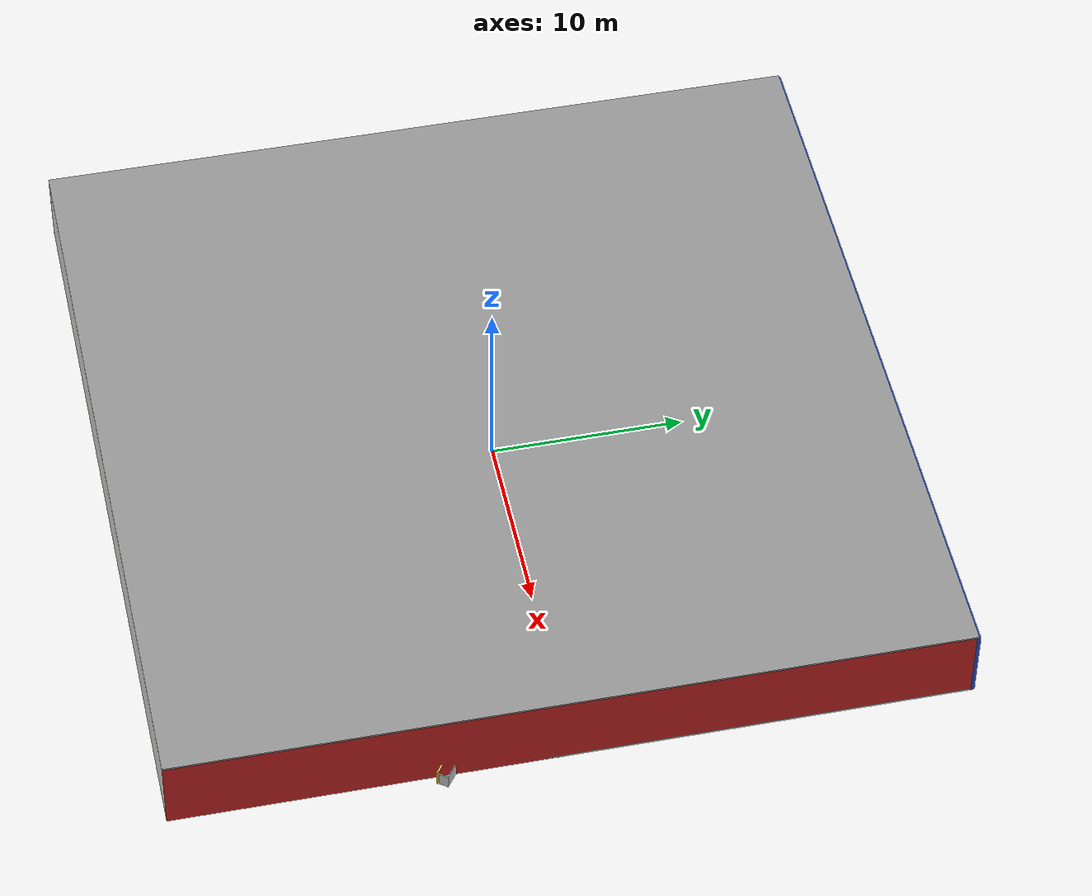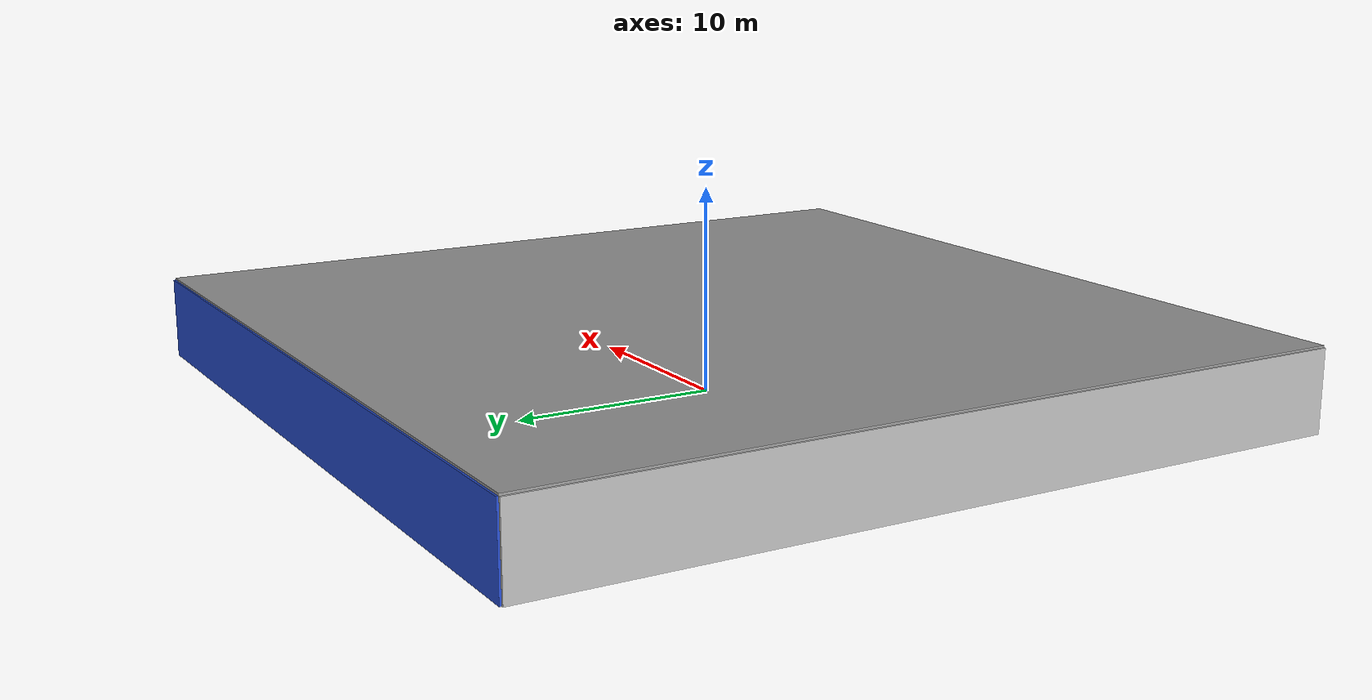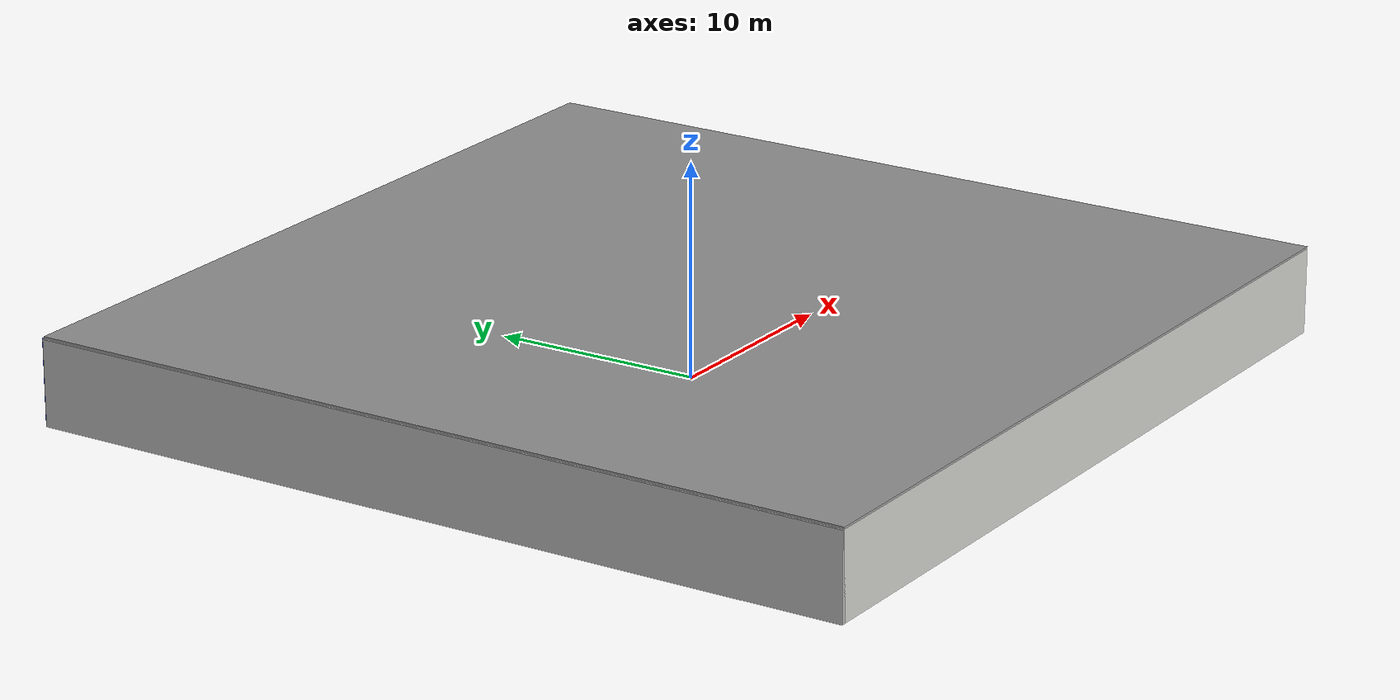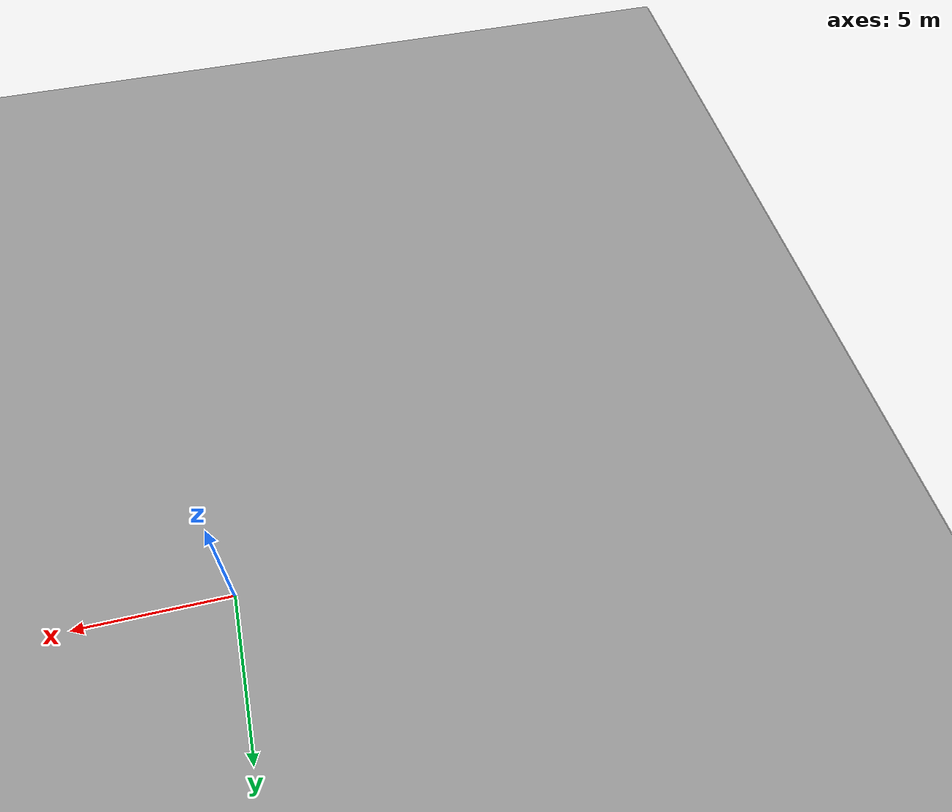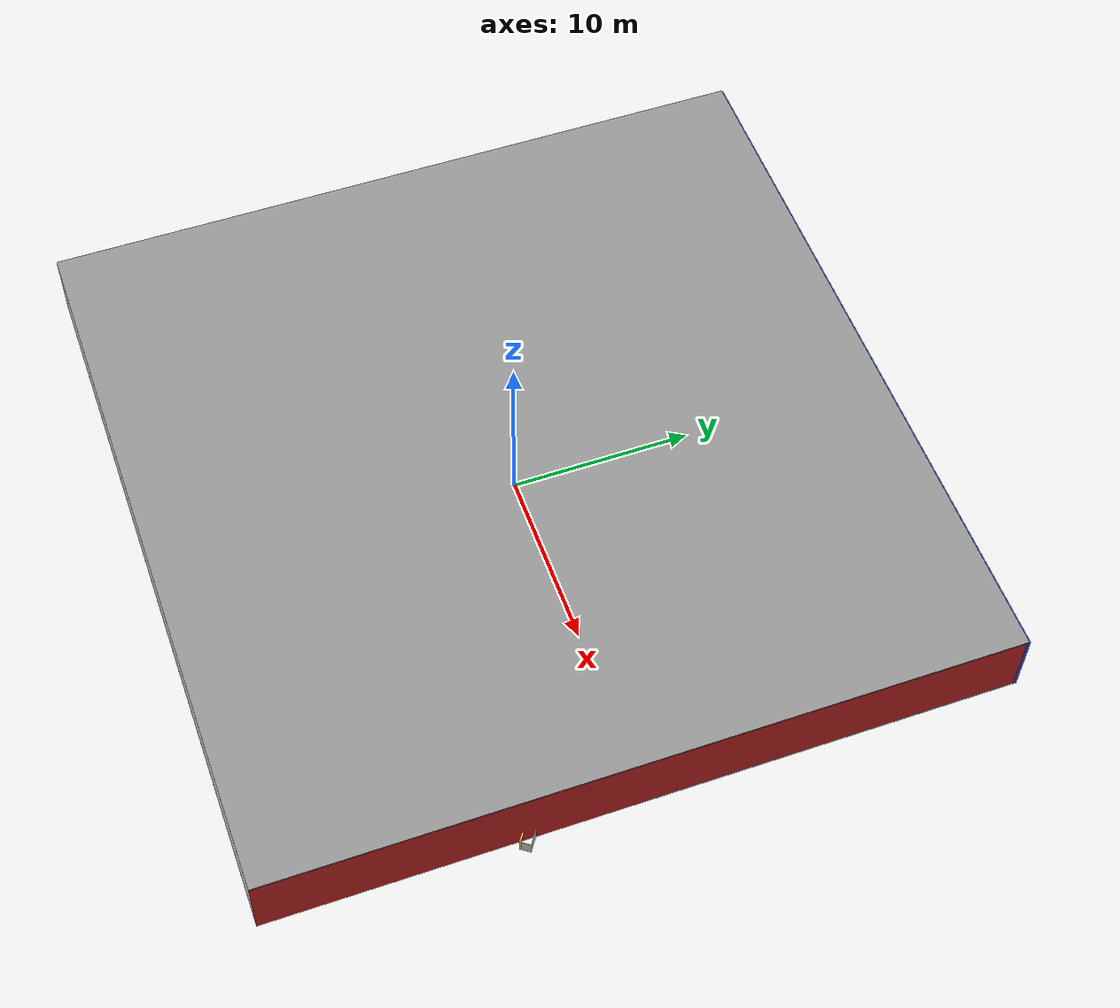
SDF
<sdf version="1.4">
 <world name="default">
  <physics type="ode">
   <max_step_size>0.001</max_step_size>
   <real_time_factor>1</real_time_factor>
   <real_time_update_rate>1000</real_time_update_rate>
   <gravity>0 0 -9.8</gravity>
  </physics>
  <scene><ambient>0.4 0.4 0.4 1</ambient><background>0.7 0.7 0.7 1</background><shadows>1</shadows></scene>
  <model name="Surrounding">
   <static>1</static>
   <link name="Ceiling">
    <collision name="Ceiling_Collision"><geometry><box><size>40 40 0.1</size></box></geometry></collision>
    <visual name="Ceiling_Visual">
     <geometry><box><size>40 40 0.1</size></box></geometry>
     <material>
      <script><uri>file://media/materials/scripts/gazebo.material</uri><name>Gazebo/Grey</name></script>
     </material>
    </visual>
    <pose>0 0 4.05 0 0 0</pose>
   </link>
   <link name="Wall_South">
    <collision name="Wall_South_Collision">
     <geometry><box><size>40 0 4</size></box></geometry>
     <pose>0 0 2 0 -0 0</pose>
    </collision>
    <visual name="Wall_South_Visual">
     <pose>0 0 2 0 -0 0</pose>
     <geometry><box><size>40 0 4</size></box></geometry>
     <material>
      <script><uri>file://media/materials/scripts/gazebo.material</uri><name>Gazebo/CeilingTiled</name></script>
     </material>
    </visual>
    <velocity_decay><linear>0</linear><angular>0</angular></velocity_decay>
    <pose>0 -20 0 0 -0 0</pose>
   </link>
   <link name="Wall_East">
    <collision name="Wall_21_Collision">
     <geometry><box><size>40 0 4</size></box></geometry>
     <pose>0 0 2 0 -0 0</pose>
    </collision>
    <visual name="Wall_21_Visual">
     <pose>0 0 2 0 -0 0</pose>
     <geometry><box><size>40 0 4</size></box></geometry>
     <material>
      <script><uri>file://media/materials/scripts/gazebo.material</uri><name>Gazebo/Red</name></script>
     </material>
    </visual>
    <velocity_decay><linear>0</linear><angular>0</angular></velocity_decay>
    <pose>20 0 0 0 -0 1.5708</pose>
   </link>
   <link name="Wall_North">
    <collision name="Wall_22_Collision">
     <geometry><box><size>40 0.2 4</size></box></geometry>
     <pose>0 0 2 0 -0 0</pose>
    </collision>
    <visual name="Wall_22_Visual">
     <pose>0 0 2 0 -0 0</pose>
     <geometry><box><size>40 0.2 4</size></box></geometry>
     <material>
      <script><uri>file://media/materials/scripts/gazebo.material</uri><name>Gazebo/Blue</name></script>
     </material>
    </visual>
    <velocity_decay><linear>0</linear><angular>0</angular></velocity_decay>
    <pose>0 20 0 0 -0 0</pose>
   </link>
   <link name="Wall_West">
    <collision name="Wall_23_Collision">
     <geometry><box><size>40 0.2 4</size></box></geometry>
     <pose>0 0 2 0 -0 0</pose>
    </collision>
    <visual name="Wall_23_Visual">
     <pose>0 0 2 0 -0 0</pose>
     <geometry><box><size>40 0.2 4</size></box></geometry>
     <material>
      <script><uri>file://media/materials/scripts/gazebo.material</uri><name>Gazebo/CloudySky</name></script>
     </material>
    </visual>
    <velocity_decay><linear>0</linear><angular>0</angular></velocity_decay>
    <pose>-20 0 0 0 0 -1.5708</pose>
   </link>
   <link name="Ground_link">
    <collision name="collision">
     <pose>0 0 .05 0 -0 0</pose>
     <geometry><box><size>40 40 0.1</size></box></geometry>
    </collision>
    <visual name="visual">
     <pose>0 0 .05 0 -0 0</pose>
     <geometry><box><size>40 40 0.1</size></box></geometry>
     <material>
      <script><uri>file://media/materials/scripts/gazebo.material</uri><name>Gazebo/LightOn</name></script>
     </material>
    </visual>
   </link>
   <static>1</static>
  </model>
  <spherical_coordinates>
   <surface_model>EARTH_WGS84</surface_model>
   <latitude_deg>0</latitude_deg>
   <longitude_deg>0</longitude_deg>
   <elevation>0</elevation>
   <heading_deg>0</heading_deg>
  </spherical_coordinates>
  <light name="lightball_0" type="diffuse">
   <diffuse>0.8 0.8 0.8 1</diffuse>
   <specular>0.2 0.2 0.2 1</specular>
   <attenuation>
    <range>100</range>
    <constant>0.7</constant>
    <linear>0.01</linear>
    <quadratic>0.001</quadratic>
   </attenuation>
   <direction>-0.5 0.1 -0.9</direction>
   <pose>-8.46423712982 -18.6484360176 0.843803012367 0 0 0</pose>
  </light>
  <light name="lightball_1" type="diffuse">
   <diffuse>0.8 0.8 0.8 1</diffuse>
   <specular>0.2 0.2 0.2 1</specular>
   <attenuation>
    <range>100</range>
    <constant>0.7</constant>
    <linear>0.01</linear>
    <quadratic>0.001</quadratic>
   </attenuation>
   <direction>-0.5 0.1 -0.9</direction>
   <pose>15.8825869062 6.5802787754 2.8383712216 0 0 0</pose>
  </light>
  <light name="lightball_2" type="diffuse">
   <diffuse>0.8 0.8 0.8 1</diffuse>
   <specular>0.2 0.2 0.2 1</specular>
   <attenuation>
    <range>100</range>
    <constant>0.7</constant>
    <linear>0.01</linear>
    <quadratic>0.001</quadratic>
   </attenuation>
   <direction>-0.5 0.1 -0.9</direction>
   <pose>4.2226193242 4.46571202612 3.17154757795 0 0 0</pose>
  </light>
  <light name="lightball_3" type="diffuse">
   <diffuse>0.8 0.8 0.8 1</diffuse>
   <specular>0.2 0.2 0.2 1</specular>
   <attenuation>
    <range>100</range>
    <constant>0.7</constant>
    <linear>0.01</linear>
    <quadratic>0.001</quadratic>
   </attenuation>
   <direction>-0.5 0.1 -0.9</direction>
   <pose>-3.86356210549 9.11044021737 3.3026920723 0 0 0</pose>
  </light>
  <light name="lightball_4" type="diffuse">
   <diffuse>0.8 0.8 0.8 1</diffuse>
   <specular>0.2 0.2 0.2 1</specular>
   <attenuation>
    <range>100</range>
    <constant>0.7</constant>
    <linear>0.01</linear>
    <quadratic>0.001</quadratic>
   </attenuation>
   <direction>-0.5 0.1 -0.9</direction>
   <pose>11.8549919986 -13.3029056478 1.64397182974 0 0 0</pose>
  </light>
  <light name="lightball_5" type="diffuse">
   <diffuse>0.8 0.8 0.8 1</diffuse>
   <specular>0.2 0.2 0.2 1</specular>
   <attenuation>
    <range>100</range>
    <constant>0.7</constant>
    <linear>0.01</linear>
    <quadratic>0.001</quadratic>
   </attenuation>
   <direction>-0.5 0.1 -0.9</direction>
   <pose>-3.20881232355 18.79743843 1.11222695657 0 0 0</pose>
  </light>
  <light name="lightball_6" type="diffuse">
   <diffuse>0.8 0.8 0.8 1</diffuse>
   <specular>0.2 0.2 0.2 1</specular>
   <attenuation>
    <range>100</range>
    <constant>0.7</constant>
    <linear>0.01</linear>
    <quadratic>0.001</quadratic>
   </attenuation>
   <direction>-0.5 0.1 -0.9</direction>
   <pose>-3.05164657091 -9.32195426374 0.792852620727 0 0 0</pose>
  </light>
  <include>
   <uri>model://construction_cone</uri>
   <pose>-17.9422545833 -18.6525148807 0 0 0 1.57447397656</pose>
  </include>
  <include><uri>model://cabinet</uri><pose>-17.0870910878 17.7044933239 0 0 0 1.90097787634</pose></include>
  <include>
   <uri>model://robocup_3Dsim_goal</uri>
   <pose>-13.3072040496 14.6511164757 0 0 0 0.0108775031944</pose>
  </include>
  <include>
   <uri>model://textured_shapes</uri>
   <pose>-11.8672178513 -0.0587713754412 0 0 0 1.63350023717</pose>
  </include>
  <include>
   <uri>model://robocup_3Dsim_goal</uri>
   <pose>-10.9853762586 15.9432899851 0 0 0 2.13297868506</pose>
  </include>
  <include>
   <uri>model://robocup_3Dsim_goal</uri>
   <pose>-7.8067470616 -9.16073770798 0 0 0 1.38628379392</pose>
  </include>
  <include>
   <uri>model://robocup_3Dsim_goal</uri>
   <pose>-8.69330342509 -5.66498250293 0 0 0 2.7014900345</pose>
  </include>
  <include><uri>model://table</uri><pose>-8.25808099371 8.79140304777 0 0 0 0.921026032963</pose></include>
  <include><uri>model://cabinet</uri><pose>-8.78420642945 11.4933703324 0 0 0 1.88679012375</pose></include>
  <include><uri>model://table</uri><pose>-4.84171408584 -18.6774269136 0 0 0 0.733435887879</pose></include>
  <include><uri>model://table</uri><pose>-4.89820009354 -4.92043926473 0 0 0 2.1084148402</pose></include>
  <include>
   <uri>model://construction_cone</uri>
   <pose>-3.1907785667 -9.3593660469 0 0 0 0.771746924317</pose>
  </include>
  <include>
   <uri>model://textured_shapes</uri>
   <pose>-1.72469338078 6.42934565335 0 0 0 1.74096939531</pose>
  </include>
  <include><uri>model://table</uri><pose>0.0143729223716 9.59961764793 0 0 0 2.67833487147</pose></include>
  <include>
   <uri>model://construction_cone</uri>
   <pose>2.60315444782 -4.89487191383 0 0 0 1.11611006229</pose>
  </include>
  <include><uri>model://cabinet</uri><pose>6.20044534492 -12.4024806259 0 0 0 0.607763840822</pose></include>
  <include>
   <uri>model://construction_cone</uri>
   <pose>13.5970555478 -14.4509726785 0 0 0 1.40588773214</pose>
  </include>
  <include>
   <uri>model://construction_cone</uri>
   <pose>13.5617493438 3.74009311553 0 0 0 0.197416834116</pose>
  </include>
  <include>
   <uri>model://textured_shapes</uri>
   <pose>12.6980416107 13.297296212 0 0 0 1.79160151576</pose>
  </include>
  <include><uri>model://cabinet</uri><pose>16.383258546 0.167426374551 0 0 0 1.63263968051</pose></include>
  <include><uri>model://cabinet</uri><pose>14.5239975589 14.3319939268 0 0 0 2.89441194649</pose></include>
  <include>
   <uri>model://robocup_3Dsim_goal</uri>
   <pose>19.5132231472 -6.21129237331 0 0 0 0.93855772505</pose>
  </include>
  <include>
   <uri>model://robocup_3Dsim_goal</uri>
   <pose>18.6798285561 8.36819942445 0 0 0 2.42110533998</pose>
  </include>
 </world>
</sdf>

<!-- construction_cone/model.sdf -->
<sdf version="1.5">
  <model name="Construction Cone">
    <link name="link">
      <collision name="collision">
        <geometry>
          <mesh>
            <scale>10 10 10</scale>
            <uri>file://isr-testbed/construction_cone/meshes/construction_cone.dae</uri>
          </mesh>
        </geometry>
      </collision>
      <visual name="visual">
        <geometry>
          <mesh>
            <scale>10 10 10</scale>
            <uri>file://isr-testbed/construction_cone/meshes/construction_cone.dae</uri>
          </mesh>
        </geometry>
      </visual>
    </link>
  </model>
</sdf>

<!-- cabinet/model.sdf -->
<sdf version="1.5">
  <model name="cabinet">
    <static>true</static>
    <link name="cabinet_bottom_plate">
      <inertial>
        <pose>0 0 -1 0 0 0</pose>
        <inertia>
          <ixx>2.050000</ixx>
          <ixy>0</ixy>
          <ixz>0</ixz>
          <iyy>2.050000</iyy>
          <iyz>0</iyz>
          <izz>2.050000</izz>
        </inertia>
        <mass>25.000000</mass>
      </inertial>
      <collision name="cabinet_bottom_plate_geom">
        <pose>0 0 0.010000 0 0 0</pose>
        <geometry>
          <box>
            <size>0.450000 0.450000 0.020000</size>
          </box>
        </geometry>
      </collision>
      <visual name="cabinet_bottom_plate_geom_visual">
        <pose>0 0 0.010000 0 0 0</pose>
        <geometry>
          <box>
            <size>0.450000 0.450000 0.020000</size>
          </box>
        </geometry>
        <material>
          <script>
            <uri>model://media/materials/scripts/gazebo.material</uri>
            <name>Gazebo/Wood</name>
          </script>
        </material>
      </visual>
      <collision name="cabinet_bottom_plate_geom_cabinet_back_plate">
        <pose>0.235000 0 0.510000 0 0 0</pose>
        <geometry>
          <box>
            <size>0.020000 0.450000 1.020000</size>
          </box>
        </geometry>
      </collision>
      <visual name="cabinet_bottom_plate_geom_cabinet_back_plate_visual">
        <pose>0.235000 0 0.510000 0 0 0</pose>
        <geometry>
          <box>
            <size>0.020000 0.450000 1.020000</size>
          </box>
        </geometry>
        <material>
          <script>
            <uri>model://media/materials/scripts/gazebo.material</uri>
            <name>Gazebo/Wood</name>
          </script>
        </material>
      </visual>
      <collision name="cabinet_bottom_plate_geom_cabinet_left_plate">
        <pose>0 0.235000 0.510000 0 0 0</pose>
        <geometry>
          <box>
            <size>0.450000 0.020000 1.020000</size>
          </box>
        </geometry>
      </collision>
      <visual name="cabinet_bottom_plate_geom_cabinet_left_plate_visual">
        <pose>0 0.235000 0.510000 0 0 0</pose>
        <geometry>
          <box>
            <size>0.450000 0.020000 1.020000</size>
          </box>
        </geometry>
        <material>
          <script>
            <uri>model://media/materials/scripts/gazebo.material</uri>
            <name>Gazebo/Wood</name>
          </script>
        </material>
      </visual>
      <collision name="cabinet_bottom_plate_geom_cabinet_middle_plate">
        <pose>0 0 0.510000 0 0 0</pose>
        <geometry>
          <box>
            <size>0.450000 0.450000 0.020000</size>
          </box>
        </geometry>
      </collision>
      <visual name="cabinet_bottom_plate_geom_cabinet_middle_plate_visual">
        <pose>0 0 0.510000 0 0 0</pose>
        <geometry>
          <box>
            <size>0.450000 0.450000 0.020000</size>
          </box>
        </geometry>
        <material>
          <script>
            <uri>model://media/materials/scripts/gazebo.material</uri>
            <name>Gazebo/Wood</name>
          </script>
        </material>
      </visual>
      <collision name="cabinet_bottom_plate_geom_cabinet_right_plate">
        <pose>0 -0.235000 0.510000 0 0 0</pose>
        <geometry>
          <box>
            <size>0.450000 0.020000 1.020000</size>
          </box>
        </geometry>
      </collision>
      <visual name="cabinet_bottom_plate_geom_cabinet_right_plate_visual">
        <pose>0 -0.235000 0.510000 0 0 0</pose>
        <geometry>
          <box>
            <size>0.450000 0.020000 1.020000</size>
          </box>
        </geometry>
        <material>
          <script>
            <uri>model://media/materials/scripts/gazebo.material</uri>
            <name>Gazebo/Wood</name>
          </script>
        </material>
      </visual>
      <collision name="cabinet_bottom_plate_geom_cabinet_top_plate">
        <pose>0 0 1.010000 0 0 0</pose>
        <geometry>
          <box>
            <size>0.450000 0.450000 0.020000</size>
          </box>
        </geometry>
      </collision>
      <visual name="cabinet_bottom_plate_geom_cabinet_top_plate_visual">
        <pose>0 0 1.010000 0 0 0</pose>
        <geometry>
          <box>
            <size>0.450000 0.450000 0.020000</size>
          </box>
        </geometry>
        <material>
          <script>
            <uri>model://media/materials/scripts/gazebo.material</uri>
            <name>Gazebo/Wood</name>
          </script>
        </material>
      </visual>
    </link>
  </model>
</sdf>

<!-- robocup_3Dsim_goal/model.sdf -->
<sdf version="1.5">
  <model name="robocup_3d_goal">
    <static>true</static>
    <link name="left_post">
      <pose>0 1.05 0.45 0 0 0</pose>
      <collision name="collision">
        <geometry>
          <cylinder>
            <radius>0.05</radius>
            <length>0.9</length>
          </cylinder>
        </geometry>
      </collision>
      <visual name="visual">
        <geometry>
          <cylinder>
            <radius>0.05</radius>
            <length>0.9</length>
          </cylinder>
        </geometry>
        <material>
          <script>
            <uri>file://media/materials/scripts/gazebo.material</uri>
            <name>Gazebo/ZincYellow</name>
          </script>
        </material>
      </visual>
    </link>
    <link name="left_support_horiz_lower">
      <pose>0.30 1.05 0.01 0 0 0</pose>
      <collision name="collision">
        <geometry>
          <box>
            <size>0.50 0.02 0.02</size>
          </box>
        </geometry>
      </collision>
      <visual name="visual">
        <geometry>
          <box>
            <size>0.50 0.02 0.02</size>
          </box>
        </geometry>
        <material>
          <script>
            <uri>file://media/materials/scripts/gazebo.material</uri>
            <name>Gazebo/White</name>
          </script>
        </material>
      </visual>
    </link>
    <link name="left_support_horiz_upper">
      <pose>0.30 1.05 0.79 0 0 0</pose>
      <collision name="collision">
        <geometry>
          <box>
            <size>0.50 0.02 0.02</size>
          </box>
        </geometry>
      </collision>
      <visual name="visual">
        <geometry>
          <box>
            <size>0.50 0.02 0.02</size>
          </box>
        </geometry>
        <material>
          <script>
            <uri>file://media/materials/scripts/gazebo.material</uri>
            <name>Gazebo/White</name>
          </script>
        </material>
      </visual>
    </link>
    <link name="left_support_vertical">
      <pose>0.56 1.05 0.4 0 1.5708 0</pose>
      <collision name="collision">
        <geometry>
          <box>
            <size>0.80 0.02 0.02</size>
          </box>
        </geometry>
      </collision>
      <visual name="visual">
        <geometry>
          <box>
            <size>0.80 0.02 0.02</size>
          </box>
        </geometry>
        <material>
          <script>
            <uri>file://media/materials/scripts/gazebo.material</uri>
            <name>Gazebo/White</name>
          </script>
        </material>
      </visual>
    </link>
    <link name="right_support_horiz_lower">
      <pose>0.30 -1.05 0.01 0 0 0</pose>
      <collision name="collision">
        <geometry>
          <box>
            <size>0.50 0.02 0.02</size>
          </box>
        </geometry>
      </collision>
      <visual name="visual">
        <geometry>
          <box>
            <size>0.50 0.02 0.02</size>
          </box>
        </geometry>
        <material>
          <script>
            <uri>file://media/materials/scripts/gazebo.material</uri>
            <name>Gazebo/White</name>
          </script>
        </material>
      </visual>
    </link>
    <link name="right_support_horiz_upper">
      <pose>0.30 -1.05 0.79 0 0 0</pose>
      <collision name="collision">
        <geometry>
          <box>
            <size>0.50 0.02 0.02</size>
          </box>
        </geometry>
      </collision>
      <visual name="visual">
        <geometry>
          <box>
            <size>0.50 0.02 0.02</size>
          </box>
        </geometry>
        <material>
          <script>
            <uri>file://media/materials/scripts/gazebo.material</uri>
            <name>Gazebo/White</name>
          </script>
        </material>
      </visual>
    </link>
    <link name="right_support_vertical">
      <pose>0.56 -1.05 0.4 0 1.5708 0</pose>
      <collision name="collision">
        <geometry>
          <box>
            <size>0.80 0.02 0.02</size>
          </box>
        </geometry>
      </collision>
      <visual name="visual">
        <geometry>
          <box>
            <size>0.80 0.02 0.02</size>
          </box>
        </geometry>
        <material>
          <script>
            <uri>file://media/materials/scripts/gazebo.material</uri>
            <name>Gazebo/White</name>
          </script>
        </material>
      </visual>
    </link>
    <link name="center_support_horiz_lower">
      <pose>0.56 0 0.01 0 1.5708 0</pose>
      <collision name="collision">
        <geometry>
          <box>
            <size>0.02 2.08 0.02</size>
          </box>
        </geometry>
      </collision>
      <visual name="visual">
        <geometry>
          <box>
            <size>0.02 2.08 0.02</size>
          </box>
        </geometry>
        <material>
          <script>
            <uri>file://media/materials/scripts/gazebo.material</uri>
            <name>Gazebo/White</name>
          </script>
        </material>
      </visual>
    </link>
    <link name="center_support_horiz_upper">
      <pose>0.56 0 0.79 0 1.5708 0</pose>
      <collision name="collision">
        <geometry>
          <box>
            <size>0.02 2.08 0.02</size>
          </box>
        </geometry>
      </collision>
      <visual name="visual">
        <geometry>
          <box>
            <size>0.02 2.08 0.02</size>
          </box>
        </geometry>
        <material>
          <script>
            <uri>file://media/materials/scripts/gazebo.material</uri>
            <name>Gazebo/White</name>
          </script>
        </material>
      </visual>
    </link>
    <link name="right_post">
      <pose>0 -1.05 0.45 0 0 0</pose>
      <collision name="collision">
        <geometry>
          <cylinder>
            <radius>0.05</radius>
            <length>0.9</length>
          </cylinder>
        </geometry>
      </collision>
      <visual name="visual">
        <geometry>
          <cylinder>
            <radius>0.05</radius>
            <length>0.9</length>
          </cylinder>
        </geometry>
        <material>
          <script>
            <uri>file://media/materials/scripts/gazebo.material</uri>
            <name>Gazebo/ZincYellow</name>
          </script>
        </material>
      </visual>
    </link>
    <link name="crossbar">
      <pose>0 0 0.85 1.57 1.57 0</pose>
      <collision name="collision">
        <geometry>
          <cylinder>
            <radius>0.05</radius>
            <length>2.0</length>
          </cylinder>
        </geometry>
      </collision>
      <visual name="visual">
        <geometry>
          <cylinder>
            <radius>0.05</radius>
            <length>2.0</length>
          </cylinder>
        </geometry>
        <material>
          <script>
            <uri>file://media/materials/scripts/gazebo.material</uri>
            <name>Gazebo/ZincYellow</name>
          </script>
        </material>
      </visual>
    </link>
    <link name="center_net">
      <pose>0.56 0 0.40 0 0 0</pose>
      <collision name="collision">
        <geometry>
          <box>
            <size>0.01 2.1 0.80</size>
          </box>
        </geometry>
      </collision>
      <visual name="visual">
        <geometry>
          <box>
            <size>0.01 2.1 0.80</size>
          </box>
        </geometry>
        <material>
          <script>
            <uri>model://../model_source/models/robocup09_spl_field/materials/scripts/</uri>
            <uri>model://../model_source/models/robocup09_spl_field/materials/textures/</uri>
            <name>RoboCup/Net</name>
          </script>
        </material>
      </visual>
    </link>
    <link name="left_net">
      <pose>0.30 1.05 0.40 0 0 0</pose>
      <collision name="collision">
        <geometry>
          <box>
            <size>0.50 0.01 0.76</size>
          </box>
        </geometry>
      </collision>
      <visual name="visual">
        <geometry>
          <box>
            <size>0.50 0.01 0.76</size>
          </box>
        </geometry>
        <material>
          <script>
            <uri>model://../model_source/models/robocup09_spl_field/materials/scripts/</uri>
            <uri>model://../model_source/models/robocup09_spl_field/materials/textures/</uri>
            <name>RoboCup/Net</name>
          </script>
        </material>
      </visual>
    </link>
    <link name="right_net">
      <pose>0.30 -1.05 0.40 0 0 0</pose>
      <collision name="collision">
        <geometry>
          <box>
            <size>0.50 0.01 0.76</size>
          </box>
        </geometry>
      </collision>
      <visual name="visual">
        <geometry>
          <box>
            <size>0.50 0.01 0.76</size>
          </box>
        </geometry>
        <material>
          <script>
            <uri>model://../model_source/models/robocup09_spl_field/materials/scripts/</uri>
            <uri>model://../model_source/models/robocup09_spl_field/materials/textures/</uri>
            <name>RoboCup/Net</name>
          </script>
        </material>
      </visual>
    </link>
  </model>
</sdf>

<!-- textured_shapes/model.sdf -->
<sdf version="1.6">
  <model name="textured_shapes">
    <pose>0 0 0.5 0 0 0</pose>
    <link name="box">
      <pose>0 -1.5 0 0 0 0</pose>
      <collision name="collision">
        <geometry>
          <box>
            <size>1 1 1</size>
          </box>
        </geometry>
      </collision>
      <visual name="visual">
        <geometry>
          <box>
            <size>1 1 1</size>
          </box>
        </geometry>
        <material>
          <script>
            <uri>model://../model_source/models/textured_shapes/materials/scripts</uri>
            <uri>model://../model_source/models/textured_shapes/materials/textures</uri>
            <name>TexturedShape/Squares</name>
          </script>
        </material>
      </visual>
    </link>
    <link name="sphere">
      <collision name="collision">
        <geometry>
          <sphere>
            <radius>0.5</radius>
          </sphere>
        </geometry>
      </collision>
      <visual name="visual">
        <geometry>
          <sphere>
            <radius>0.5</radius>
          </sphere>
        </geometry>
        <material>
          <script>
            <uri>model://../model_source/models/textured_shapes/materials/scripts</uri>
            <uri>model://../model_source/models/textured_shapes/materials/textures</uri>
            <name>TexturedShape/Squares</name>
          </script>
        </material>
      </visual>
    </link>
    <link name="cylinder">
      <pose>0 1.5 0 0 0 0</pose>
      <collision name="collision">
        <geometry>
          <cylinder>
            <radius>0.5</radius>
            <length>1</length>
          </cylinder>
        </geometry>
      </collision>
      <visual name="visual">
        <geometry>
          <cylinder>
            <radius>0.5</radius>
            <length>1</length>
          </cylinder>
        </geometry>
        <material>
          <script>
            <uri>model://../model_source/models/textured_shapes/materials/scripts</uri>
            <uri>model://../model_source/models/textured_shapes/materials/textures</uri>
            <name>TexturedShape/Squares</name>
          </script>
        </material>
      </visual>
    </link>
  </model>
</sdf>

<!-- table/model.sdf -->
<sdf version="1.5">
  <model name="table">
    <static>true</static>
    <link name="link">
      <collision name="surface">
        <pose>0 0 1.0 0 0 0</pose>
        <geometry>
          <box>
            <size>1.5 0.8 0.03</size>
          </box>
        </geometry>
        <surface>
          <friction>
            <ode>
              <mu>0.6</mu>
              <mu2>0.6</mu2>
            </ode>
          </friction>
        </surface>
      </collision>
      <visual name="visual1">
        <pose>0 0 1.0 0 0 0</pose>
        <geometry>
          <box>
            <size>1.5 0.8 0.03</size>
          </box>
        </geometry>
        <material>
          <script>
            <uri>model://media/materials/scripts/gazebo.material</uri>
            <name>Gazebo/Wood</name>
          </script>
        </material>
      </visual>
      <collision name="front_left_leg">
        <pose>0.68 0.38 0.5 0 0 0</pose>
        <geometry>
          <cylinder>
            <radius>0.02</radius>
            <length>1.0</length>
          </cylinder>
        </geometry>
      </collision>
      <visual name="front_left_leg">
        <pose>0.68 0.38 0.5 0 0 0</pose>
        <geometry>
          <cylinder>
            <radius>0.02</radius>
            <length>1.0</length>
          </cylinder>
        </geometry>
        <material>
          <script>
            <uri>model://media/materials/scripts/gazebo.material</uri>
            <name>Gazebo/Grey</name>
          </script>
        </material>
      </visual>
      <collision name="front_right_leg">
        <pose>0.68 -0.38 0.5 0 0 0</pose>
        <geometry>
          <cylinder>
            <radius>0.02</radius>
            <length>1.0</length>
          </cylinder>
        </geometry>
      </collision>
      <visual name="front_right_leg">
        <pose>0.68 -0.38 0.5 0 0 0</pose>
        <geometry>
          <cylinder>
            <radius>0.02</radius>
            <length>1.0</length>
          </cylinder>
        </geometry>
        <material>
          <script>
            <uri>model://media/materials/scripts/gazebo.material</uri>
            <name>Gazebo/Grey</name>
          </script>
        </material>
      </visual>
      <collision name="back_right_leg">
        <pose>-0.68 -0.38 0.5 0 0 0</pose>
        <geometry>
          <cylinder>
            <radius>0.02</radius>
            <length>1.0</length>
          </cylinder>
        </geometry>
      </collision>
      <visual name="back_right_leg">
        <pose>-0.68 -0.38 0.5 0 0 0</pose>
        <geometry>
          <cylinder>
            <radius>0.02</radius>
            <length>1.0</length>
          </cylinder>
        </geometry>
        <material>
          <script>
            <uri>model://media/materials/scripts/gazebo.material</uri>
            <name>Gazebo/Grey</name>
          </script>
        </material>
      </visual>
      <collision name="back_left_leg">
        <pose>-0.68 0.38 0.5 0 0 0</pose>
        <geometry>
          <cylinder>
            <radius>0.02</radius>
            <length>1.0</length>
          </cylinder>
        </geometry>
      </collision>
      <visual name="back_left_leg">
        <pose>-0.68 0.38 0.5 0 0 0</pose>
        <geometry>
          <cylinder>
            <radius>0.02</radius>
            <length>1.0</length>
          </cylinder>
        </geometry>
        <material>
          <script>
            <uri>model://media/materials/scripts/gazebo.material</uri>
            <name>Gazebo/Grey</name>
          </script>
        </material>
      </visual>
    </link>
  </model>
</sdf>
